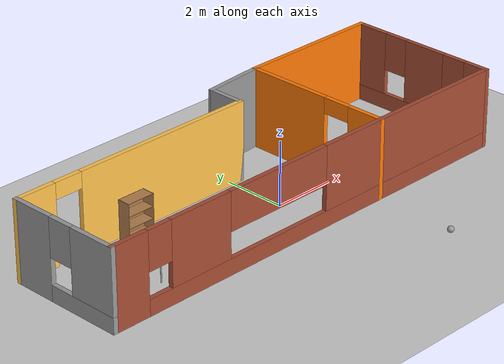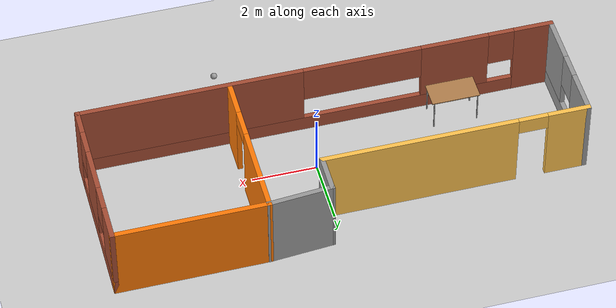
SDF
<sdf version="1.6">
 <world name="default">
  <light name="sun" type="directional">
   <pose>0 0 10 0 -0 0</pose>
   <diffuse>0.8 0.8 0.8 1</diffuse>
   <specular>0.2 0.2 0.2 1</specular>
   <attenuation>
    <range>1000</range>
    <constant>0.9</constant>
    <linear>0.01</linear>
    <quadratic>0.001</quadratic>
   </attenuation>
   <direction>-0.5 0.1 -0.9</direction>
   <spot><inner_angle>0</inner_angle><outer_angle>0</outer_angle><falloff>0</falloff></spot>
  </light>
  <model name="ground_plane">
   <static>1</static>
   <link name="link">
    <collision name="collision">
     <geometry><plane><normal>0 0 1</normal><size>100 100</size></plane></geometry>
     <surface>
      <contact><collide_bitmask>65535</collide_bitmask></contact>
      <friction><ode><mu>100</mu><mu2>50</mu2></ode></friction>
     </surface>
    </collision>
    <visual name="visual">
     <cast_shadows>0</cast_shadows>
     <geometry><plane><normal>0 0 1</normal><size>100 100</size></plane></geometry>
     <material>
      <script><uri>file://media/materials/scripts/gazebo.material</uri><name>Gazebo/Grey</name></script>
     </material>
    </visual>
   </link>
  </model>
  <gravity>0 0 -9.8</gravity>
  <magnetic_field>6e-06 2.3e-05 -4.2e-05</magnetic_field>
  <atmosphere type="adiabatic"/>
  <physics type="ode">
   <max_step_size>0.001</max_step_size>
   <real_time_factor>1</real_time_factor>
   <real_time_update_rate>1000</real_time_update_rate>
  </physics>
  <scene><ambient>0.4 0.4 0.4 1</ambient><background>0.7 0.7 0.7 1</background><shadows>1</shadows></scene>
  <spherical_coordinates>
   <surface_model>EARTH_WGS84</surface_model>
   <latitude_deg>0</latitude_deg>
   <longitude_deg>0</longitude_deg>
   <elevation>0</elevation>
   <heading_deg>0</heading_deg>
  </spherical_coordinates>
  <model name="Building">
   <pose>-0.469156 0.724931 0 0 -0 0</pose>
   <link name="Wall_1">
    <pose>-7.3 -0.627835 0 0 0 -1.5708</pose>
    <visual name="Wall_1_Visual_0">
     <pose>-1.17126 0 1.25 0 -0 0</pose>
     <geometry><box><size>1.40748 0.15 2.5</size></box></geometry>
     <material>
      <script><uri>file://media/materials/scripts/gazebo.material</uri><name>Gazebo/Grey</name></script>
      <ambient>1 1 1 1</ambient>
     </material>
     <meta><layer>0</layer></meta>
    </visual>
    <collision name="Wall_1_Collision_0">
     <geometry><box><size>1.40748 0.15 2.5</size></box></geometry>
     <pose>-1.17126 0 1.25 0 -0 0</pose>
    </collision>
    <visual name="Wall_1_Visual_1">
     <pose>0.703738 0 0.25 0 -0 0</pose>
     <geometry><box><size>2.34253 0.15 0.5</size></box></geometry>
     <material>
      <script><uri>file://media/materials/scripts/gazebo.material</uri><name>Gazebo/Grey</name></script>
      <ambient>1 1 1 1</ambient>
     </material>
     <meta><layer>0</layer></meta>
    </visual>
    <collision name="Wall_1_Collision_1">
     <geometry><box><size>2.34253 0.15 0.5</size></box></geometry>
     <pose>0.703738 0 0.25 0 -0 0</pose>
    </collision>
    <visual name="Wall_1_Visual_2">
     <pose>1.10374 0 1.5 0 -0 0</pose>
     <geometry><box><size>1.54252 0.15 2</size></box></geometry>
     <material>
      <script><uri>file://media/materials/scripts/gazebo.material</uri><name>Gazebo/Grey</name></script>
      <ambient>1 1 1 1</ambient>
     </material>
     <meta><layer>0</layer></meta>
    </visual>
    <collision name="Wall_1_Collision_2">
     <geometry><box><size>1.54252 0.15 2</size></box></geometry>
     <pose>1.10374 0 1.5 0 -0 0</pose>
    </collision>
    <visual name="Wall_1_Visual_3">
     <pose>-0.067525 0 1.9 0 -0 0</pose>
     <geometry><box><size>0.8 0.15 1.2</size></box></geometry>
     <material>
      <script><uri>file://media/materials/scripts/gazebo.material</uri><name>Gazebo/Grey</name></script>
      <ambient>1 1 1 1</ambient>
     </material>
     <meta><layer>0</layer></meta>
    </visual>
    <collision name="Wall_1_Collision_3">
     <geometry><box><size>0.8 0.15 1.2</size></box></geometry>
     <pose>-0.067525 0 1.9 0 -0 0</pose>
    </collision>
   </link>
   <link name="Wall_2">
    <pose>0 -2.42783 0 0 -0 0</pose>
    <visual name="Wall_2_Visual_0">
     <pose>-6.75061 0 1.25 0 -0 0</pose>
     <geometry><box><size>1.24877 0.15 2.5</size></box></geometry>
     <material>
      <script><uri>file://media/materials/scripts/gazebo.material</uri><name>Gazebo/Bricks</name></script>
      <ambient>1 0.764706 0.305882 1</ambient>
     </material>
     <meta><layer>0</layer></meta>
    </visual>
    <collision name="Wall_2_Collision_0">
     <geometry><box><size>1.24877 0.15 2.5</size></box></geometry>
     <pose>-6.75061 0 1.25 0 -0 0</pose>
    </collision>
    <visual name="Wall_2_Visual_1">
     <pose>0.624388 0 0.25 0 -0 0</pose>
     <geometry><box><size>13.5012 0.15 0.5</size></box></geometry>
     <material>
      <script><uri>file://media/materials/scripts/gazebo.material</uri><name>Gazebo/Bricks</name></script>
      <ambient>1 0.764706 0.305882 1</ambient>
     </material>
     <meta><layer>0</layer></meta>
    </visual>
    <collision name="Wall_2_Collision_1">
     <geometry><box><size>13.5012 0.15 0.5</size></box></geometry>
     <pose>0.624388 0 0.25 0 -0 0</pose>
    </collision>
    <visual name="Wall_2_Visual_2">
     <pose>-4.27147 0 1.5 0 -0 0</pose>
     <geometry><box><size>2.1095 0.15 2</size></box></geometry>
     <material>
      <script><uri>file://media/materials/scripts/gazebo.material</uri><name>Gazebo/Bricks</name></script>
      <ambient>1 0.764706 0.305882 1</ambient>
     </material>
     <meta><layer>0</layer></meta>
    </visual>
    <collision name="Wall_2_Collision_2">
     <geometry><box><size>2.1095 0.15 2</size></box></geometry>
     <pose>-4.27147 0 1.5 0 -0 0</pose>
    </collision>
    <visual name="Wall_2_Visual_3">
     <pose>3.90744 0 1.5 0 -0 0</pose>
     <geometry><box><size>6.93513 0.15 2</size></box></geometry>
     <material>
      <script><uri>file://media/materials/scripts/gazebo.material</uri><name>Gazebo/Bricks</name></script>
      <ambient>1 0.764706 0.305882 1</ambient>
     </material>
     <meta><layer>0</layer></meta>
    </visual>
    <collision name="Wall_2_Collision_3">
     <geometry><box><size>6.93513 0.15 2</size></box></geometry>
     <pose>3.90744 0 1.5 0 -0 0</pose>
    </collision>
    <visual name="Wall_2_Visual_4">
     <pose>-5.72623 0 1.9 0 -0 0</pose>
     <geometry><box><size>0.8 0.15 1.2</size></box></geometry>
     <material>
      <script><uri>file://media/materials/scripts/gazebo.material</uri><name>Gazebo/Bricks</name></script>
      <ambient>1 0.764706 0.305882 1</ambient>
     </material>
     <meta><layer>0</layer></meta>
    </visual>
    <collision name="Wall_2_Collision_4">
     <geometry><box><size>0.8 0.15 1.2</size></box></geometry>
     <pose>-5.72623 0 1.9 0 -0 0</pose>
    </collision>
    <visual name="Wall_2_Visual_5">
     <pose>-1.38843 0 1.9 0 -0 0</pose>
     <geometry><box><size>3.6566 0.15 1.2</size></box></geometry>
     <material>
      <script><uri>file://media/materials/scripts/gazebo.material</uri><name>Gazebo/Bricks</name></script>
      <ambient>1 0.764706 0.305882 1</ambient>
     </material>
     <meta><layer>0</layer></meta>
    </visual>
    <collision name="Wall_2_Collision_5">
     <geometry><box><size>3.6566 0.15 1.2</size></box></geometry>
     <pose>-1.38843 0 1.9 0 -0 0</pose>
    </collision>
   </link>
   <link name="Wall_3">
    <pose>7.3 -0.002835 0 0 -0 1.5708</pose>
    <visual name="Wall_3_Visual_0">
     <pose>-2.08581 0 1.25 0 -0 0</pose>
     <geometry><box><size>0.828375 0.15 2.5</size></box></geometry>
     <material>
      <script><uri>file://media/materials/scripts/gazebo.material</uri><name>Gazebo/Bricks</name></script>
      <ambient>1 1 1 1</ambient>
     </material>
     <meta><layer>0</layer></meta>
    </visual>
    <collision name="Wall_3_Collision_0">
     <geometry><box><size>0.828375 0.15 2.5</size></box></geometry>
     <pose>-2.08581 0 1.25 0 -0 0</pose>
    </collision>
    <visual name="Wall_3_Visual_1">
     <pose>0.414187 0 0.25 0 -0 0</pose>
     <geometry><box><size>4.17162 0.15 0.5</size></box></geometry>
     <material>
      <script><uri>file://media/materials/scripts/gazebo.material</uri><name>Gazebo/Bricks</name></script>
      <ambient>1 1 1 1</ambient>
     </material>
     <meta><layer>0</layer></meta>
    </visual>
    <collision name="Wall_3_Collision_1">
     <geometry><box><size>4.17162 0.15 0.5</size></box></geometry>
     <pose>0.414187 0 0.25 0 -0 0</pose>
    </collision>
    <visual name="Wall_3_Visual_2">
     <pose>-0.154113 0 1.5 0 -0 0</pose>
     <geometry><box><size>1.43502 0.15 2</size></box></geometry>
     <material>
      <script><uri>file://media/materials/scripts/gazebo.material</uri><name>Gazebo/Bricks</name></script>
      <ambient>1 1 1 1</ambient>
     </material>
     <meta><layer>0</layer></meta>
    </visual>
    <collision name="Wall_3_Collision_2">
     <geometry><box><size>1.43502 0.15 2</size></box></geometry>
     <pose>-0.154113 0 1.5 0 -0 0</pose>
    </collision>
    <visual name="Wall_3_Visual_3">
     <pose>1.9317 0 1.5 0 -0 0</pose>
     <geometry><box><size>1.1366 0.15 2</size></box></geometry>
     <material>
      <script><uri>file://media/materials/scripts/gazebo.material</uri><name>Gazebo/Bricks</name></script>
      <ambient>1 1 1 1</ambient>
     </material>
     <meta><layer>0</layer></meta>
    </visual>
    <collision name="Wall_3_Collision_3">
     <geometry><box><size>1.1366 0.15 2</size></box></geometry>
     <pose>1.9317 0 1.5 0 -0 0</pose>
    </collision>
    <visual name="Wall_3_Visual_4">
     <pose>-1.27163 0 1.9 0 -0 0</pose>
     <geometry><box><size>0.8 0.15 1.2</size></box></geometry>
     <material>
      <script><uri>file://media/materials/scripts/gazebo.material</uri><name>Gazebo/Bricks</name></script>
      <ambient>1 1 1 1</ambient>
     </material>
     <meta><layer>0</layer></meta>
    </visual>
    <collision name="Wall_3_Collision_4">
     <geometry><box><size>0.8 0.15 1.2</size></box></geometry>
     <pose>-1.27163 0 1.9 0 -0 0</pose>
    </collision>
    <visual name="Wall_3_Visual_5">
     <pose>0.9634 0 1.9 0 -0 0</pose>
     <geometry><box><size>0.8 0.15 1.2</size></box></geometry>
     <material>
      <script><uri>file://media/materials/scripts/gazebo.material</uri><name>Gazebo/Bricks</name></script>
      <ambient>1 1 1 1</ambient>
     </material>
     <meta><layer>0</layer></meta>
    </visual>
    <collision name="Wall_3_Collision_5">
     <geometry><box><size>0.8 0.15 1.2</size></box></geometry>
     <pose>0.9634 0 1.9 0 -0 0</pose>
    </collision>
   </link>
   <link name="Wall_4">
    <collision name="Wall_4_Collision">
     <geometry><box><size>4.75 0.15 2.5</size></box></geometry>
     <pose>0 0 1.25 0 -0 0</pose>
    </collision>
    <visual name="Wall_4_Visual">
     <pose>0 0 1.25 0 -0 0</pose>
     <geometry><box><size>4.75 0.15 2.5</size></box></geometry>
     <material>
      <script><uri>file://media/materials/scripts/gazebo.material</uri><name>Gazebo/Grey</name></script>
      <ambient>0.996078 0.47451 0.0196078 1</ambient>
     </material>
     <meta><layer>0</layer></meta>
    </visual>
    <pose>5 2.42217 0 0 -0 3.14159</pose>
   </link>
   <link name="Wall_5">
    <pose>2.7 -0.002835 0 0 0 -1.5708</pose>
    <visual name="Wall_5_Visual_0">
     <pose>-1.06401 0 1.25 0 -0 0</pose>
     <geometry><box><size>2.87197 0.15 2.5</size></box></geometry>
     <material>
      <script><uri>file://media/materials/scripts/gazebo.material</uri><name>Gazebo/Grey</name></script>
      <ambient>0.996078 0.47451 0.0196078 1</ambient>
     </material>
     <meta><layer>0</layer></meta>
    </visual>
    <collision name="Wall_5_Collision_0">
     <geometry><box><size>2.87197 0.15 2.5</size></box></geometry>
     <pose>-1.06401 0 1.25 0 -0 0</pose>
    </collision>
    <visual name="Wall_5_Visual_1">
     <pose>1.88599 0 1.25 0 -0 0</pose>
     <geometry><box><size>1.22802 0.15 2.5</size></box></geometry>
     <material>
      <script><uri>file://media/materials/scripts/gazebo.material</uri><name>Gazebo/Grey</name></script>
      <ambient>0.996078 0.47451 0.0196078 1</ambient>
     </material>
     <meta><layer>0</layer></meta>
    </visual>
    <collision name="Wall_5_Collision_1">
     <geometry><box><size>1.22802 0.15 2.5</size></box></geometry>
     <pose>1.88599 0 1.25 0 -0 0</pose>
    </collision>
    <visual name="Wall_5_Visual_2">
     <pose>0.821975 0 2.25 0 -0 0</pose>
     <geometry><box><size>0.9 0.15 0.5</size></box></geometry>
     <material>
      <script><uri>file://media/materials/scripts/gazebo.material</uri><name>Gazebo/Grey</name></script>
      <ambient>0.996078 0.47451 0.0196078 1</ambient>
     </material>
     <meta><layer>0</layer></meta>
    </visual>
    <collision name="Wall_5_Collision_2">
     <geometry><box><size>0.9 0.15 0.5</size></box></geometry>
     <pose>0.821975 0 2.25 0 -0 0</pose>
    </collision>
   </link>
   <link name="Wall_7">
    <pose>-3.25 1.17216 0 0 -0 0</pose>
    <visual name="Wall_7_Visual_0">
     <pose>-3.4661 0 1.25 0 -0 0</pose>
     <geometry><box><size>1.3178 0.15 2.5</size></box></geometry>
     <material>
      <script><uri>file://media/materials/scripts/gazebo.material</uri><name>Gazebo/Grey</name></script>
      <ambient>1 0.764706 0.305882 1</ambient>
     </material>
     <meta><layer>0</layer></meta>
    </visual>
    <collision name="Wall_7_Collision_0">
     <geometry><box><size>1.3178 0.15 2.5</size></box></geometry>
     <pose>-3.4661 0 1.25 0 -0 0</pose>
    </collision>
    <visual name="Wall_7_Visual_1">
     <pose>1.1089 0 1.25 0 -0 0</pose>
     <geometry><box><size>6.0322 0.15 2.5</size></box></geometry>
     <material>
      <script><uri>file://media/materials/scripts/gazebo.material</uri><name>Gazebo/Grey</name></script>
      <ambient>1 0.764706 0.305882 1</ambient>
     </material>
     <meta><layer>0</layer></meta>
    </visual>
    <collision name="Wall_7_Collision_1">
     <geometry><box><size>6.0322 0.15 2.5</size></box></geometry>
     <pose>1.1089 0 1.25 0 -0 0</pose>
    </collision>
    <visual name="Wall_7_Visual_2">
     <pose>-2.3572 0 2.25 0 -0 0</pose>
     <geometry><box><size>0.9 0.15 0.5</size></box></geometry>
     <material>
      <script><uri>file://media/materials/scripts/gazebo.material</uri><name>Gazebo/Grey</name></script>
      <ambient>1 0.764706 0.305882 1</ambient>
     </material>
     <meta><layer>0</layer></meta>
    </visual>
    <collision name="Wall_7_Collision_2">
     <geometry><box><size>0.9 0.15 0.5</size></box></geometry>
     <pose>-2.3572 0 2.25 0 -0 0</pose>
    </collision>
   </link>
   <link name="Wall_8">
    <collision name="Wall_8_Collision">
     <geometry><box><size>1.25 0.15 2.5</size></box></geometry>
     <pose>0 0 1.25 0 -0 0</pose>
    </collision>
    <visual name="Wall_8_Visual">
     <pose>0 0 1.25 0 -0 0</pose>
     <geometry><box><size>1.25 0.15 2.5</size></box></geometry>
     <material>
      <script><uri>file://media/materials/scripts/gazebo.material</uri><name>Gazebo/Grey</name></script>
      <ambient>1 1 1 1</ambient>
     </material>
     <meta><layer>0</layer></meta>
    </visual>
    <pose>0.8 1.72216 0 0 -0 1.5708</pose>
   </link>
   <link name="Wall_9">
    <collision name="Wall_9_Collision">
     <geometry><box><size>2.05591 0.15 2.5</size></box></geometry>
     <pose>0 0 1.25 0 -0 0</pose>
    </collision>
    <visual name="Wall_9_Visual">
     <pose>0 0 1.25 0 -0 0</pose>
     <geometry><box><size>2.05591 0.15 2.5</size></box></geometry>
     <material>
      <script><uri>file://media/materials/scripts/gazebo.material</uri><name>Gazebo/Grey</name></script>
      <ambient>1 1 1 1</ambient>
     </material>
     <meta><layer>0</layer></meta>
    </visual>
    <pose>1.75 2.34716 0 0 -0 0.078784</pose>
   </link>
   <static>1</static>
  </model>
  <model name="bookshelf">
   <static>1</static>
   <link name="link">
    <inertial><mass>1</mass></inertial>
    <collision name="back">
     <pose>0 0.005 0.6 0 -0 0</pose>
     <geometry><box><size>0.9 0.01 1.2</size></box></geometry>
    </collision>
    <visual name="visual1">
     <pose>0 0.005 0.6 0 -0 0</pose>
     <geometry><box><size>0.9 0.01 1.2</size></box></geometry>
     <material>
      <script><uri>file://media/materials/scripts/gazebo.material</uri><name>Gazebo/Wood</name></script>
     </material>
    </visual>
    <collision name="left_side">
     <pose>0.45 -0.195 0.6 0 -0 0</pose>
     <geometry><box><size>0.02 0.4 1.2</size></box></geometry>
    </collision>
    <visual name="visual2">
     <pose>0.45 -0.195 0.6 0 -0 0</pose>
     <geometry><box><size>0.02 0.4 1.2</size></box></geometry>
     <material>
      <script><uri>file://media/materials/scripts/gazebo.material</uri><name>Gazebo/Wood</name></script>
     </material>
    </visual>
    <collision name="right_side">
     <pose>-0.45 -0.195 0.6 0 -0 0</pose>
     <geometry><box><size>0.02 0.4 1.2</size></box></geometry>
    </collision>
    <visual name="visual3">
     <pose>-0.45 -0.195 0.6 0 -0 0</pose>
     <geometry><box><size>0.02 0.4 1.2</size></box></geometry>
     <material>
      <script><uri>file://media/materials/scripts/gazebo.material</uri><name>Gazebo/Wood</name></script>
     </material>
    </visual>
    <collision name="bottom">
     <pose>0 -0.195 0.03 0 -0 0</pose>
     <geometry><box><size>0.88 0.4 0.06</size></box></geometry>
    </collision>
    <visual name="visual4">
     <pose>0 -0.195 0.03 0 -0 0</pose>
     <geometry><box><size>0.88 0.4 0.06</size></box></geometry>
     <material>
      <script><uri>file://media/materials/scripts/gazebo.material</uri><name>Gazebo/Wood</name></script>
     </material>
    </visual>
    <collision name="top">
     <pose>0 -0.195 1.19 0 -0 0</pose>
     <geometry><box><size>0.88 0.4 0.02</size></box></geometry>
    </collision>
    <visual name="visual5">
     <pose>0 -0.195 1.19 0 -0 0</pose>
     <geometry><box><size>0.88 0.4 0.02</size></box></geometry>
     <material>
      <script><uri>file://media/materials/scripts/gazebo.material</uri><name>Gazebo/Wood</name></script>
     </material>
    </visual>
    <collision name="low_shelf">
     <pose>0 -0.195 0.43 0 -0 0</pose>
     <geometry><box><size>0.88 0.4 0.02</size></box></geometry>
    </collision>
    <visual name="visual6">
     <pose>0 -0.195 0.43 0 -0 0</pose>
     <geometry><box><size>0.88 0.4 0.02</size></box></geometry>
     <material>
      <script><uri>file://media/materials/scripts/gazebo.material</uri><name>Gazebo/Wood</name></script>
     </material>
    </visual>
    <collision name="high_shelf">
     <pose>0 -0.195 0.8 0 -0 0</pose>
     <geometry><box><size>0.88 0.4 0.02</size></box></geometry>
    </collision>
    <visual name="visual7">
     <pose>0 -0.195 0.8 0 -0 0</pose>
     <geometry><box><size>0.88 0.4 0.02</size></box></geometry>
     <material>
      <script><uri>file://media/materials/scripts/gazebo.material</uri><name>Gazebo/Wood</name></script>
     </material>
    </visual>
   </link>
   <pose>-3.94216 1.79729 0 0 -0 0</pose>
  </model>
  <model name="table">
   <static>1</static>
   <link name="link">
    <collision name="surface">
     <pose>0 0 1 0 -0 0</pose>
     <geometry><box><size>1.5 0.8 0.03</size></box></geometry>
     <surface><friction><ode><mu>0.6</mu><mu2>0.6</mu2></ode></friction></surface>
    </collision>
    <visual name="visual1">
     <pose>0 0 1 0 -0 0</pose>
     <geometry><box><size>1.5 0.8 0.03</size></box></geometry>
     <material>
      <script><uri>file://media/materials/scripts/gazebo.material</uri><name>Gazebo/Wood</name></script>
     </material>
    </visual>
    <collision name="front_left_leg">
     <pose>0.68 0.38 0.5 0 -0 0</pose>
     <geometry><cylinder><radius>0.02</radius><length>1</length></cylinder></geometry>
    </collision>
    <visual name="front_left_leg">
     <pose>0.68 0.38 0.5 0 -0 0</pose>
     <geometry><cylinder><radius>0.02</radius><length>1</length></cylinder></geometry>
     <material>
      <script><uri>file://media/materials/scripts/gazebo.material</uri><name>Gazebo/Grey</name></script>
     </material>
    </visual>
    <collision name="front_right_leg">
     <pose>0.68 -0.38 0.5 0 -0 0</pose>
     <geometry><cylinder><radius>0.02</radius><length>1</length></cylinder></geometry>
    </collision>
    <visual name="front_right_leg">
     <pose>0.68 -0.38 0.5 0 -0 0</pose>
     <geometry><cylinder><radius>0.02</radius><length>1</length></cylinder></geometry>
     <material>
      <script><uri>file://media/materials/scripts/gazebo.material</uri><name>Gazebo/Grey</name></script>
     </material>
    </visual>
    <collision name="back_right_leg">
     <pose>-0.68 -0.38 0.5 0 -0 0</pose>
     <geometry><cylinder><radius>0.02</radius><length>1</length></cylinder></geometry>
    </collision>
    <visual name="back_right_leg">
     <pose>-0.68 -0.38 0.5 0 -0 0</pose>
     <geometry><cylinder><radius>0.02</radius><length>1</length></cylinder></geometry>
     <material>
      <script><uri>file://media/materials/scripts/gazebo.material</uri><name>Gazebo/Grey</name></script>
     </material>
    </visual>
    <collision name="back_left_leg">
     <pose>-0.68 0.38 0.5 0 -0 0</pose>
     <geometry><cylinder><radius>0.02</radius><length>1</length></cylinder></geometry>
    </collision>
    <visual name="back_left_leg">
     <pose>-0.68 0.38 0.5 0 -0 0</pose>
     <geometry><cylinder><radius>0.02</radius><length>1</length></cylinder></geometry>
     <material>
      <script><uri>file://media/materials/scripts/gazebo.material</uri><name>Gazebo/Grey</name></script>
     </material>
    </visual>
   </link>
   <pose>-4.54324 -1.09934 0 0 -0 0</pose>
  </model>
  <model name="my_ball">
   <link name="link">
    <inertial>
     <mass>1</mass>
     <inertia><ixx>0.1</ixx><ixy>0</ixy><ixz>0</ixz><iyy>0.1</iyy><iyz>0</iyz><izz>0.1</izz></inertia>
    </inertial>
    <visual name="visual">
     <geometry><sphere><radius>0.1</radius></sphere></geometry>
     <material>
      <script><name>Gazebo/Grey</name><uri>file://media/materials/scripts/gazebo.material</uri></script>
      <shader type="pixel"><normal_map>__default__</normal_map></shader>
      <ambient>1 1 1 1</ambient>
      <diffuse>1 1 1 1</diffuse>
      <specular>1 1 1 1</specular>
      <emissive>1 1 1 1</emissive>
     </material>
    </visual>
    <collision name="collision">
     <geometry><sphere><radius>0.1</radius></sphere></geometry>
     <surface>
      <friction>
       <ode><mu>1</mu><mu2>1</mu2><fdir1>0 0 0</fdir1><slip1>0</slip1><slip2>0</slip2></ode>
       <torsional>
        <coefficient>1</coefficient>
        <patch_radius>0</patch_radius>
        <surface_radius>0</surface_radius>
        <use_patch_radius>1</use_patch_radius>
        <ode><slip>0</slip></ode>
       </torsional>
      </friction>
      <bounce><restitution_coefficient>0</restitution_coefficient><threshold>1e+06</threshold></bounce>
      <contact>
       <collide_without_contact>0</collide_without_contact>
       <collide_without_contact_bitmask>1</collide_without_contact_bitmask>
       <collide_bitmask>1</collide_bitmask>
       <ode>
        <soft_cfm>0</soft_cfm>
        <soft_erp>0.2</soft_erp>
        <kp>1e+13</kp>
        <kd>1</kd>
        <max_vel>0.01</max_vel>
        <min_depth>0</min_depth>
       </ode>
       <bullet>
        <split_impulse>1</split_impulse>
        <split_impulse_penetration_threshold>-0.01</split_impulse_penetration_threshold>
        <soft_cfm>0</soft_cfm>
        <soft_erp>0.2</soft_erp>
        <kp>1e+13</kp>
        <kd>1</kd>
       </bullet>
      </contact>
     </surface>
    </collision>
   </link>
   <static>0</static>
   <pose>2.13312 -4.41099 0.1 0 -0 0</pose>
  </model>
  <plugin filename="libcollision_map_creator.so" name="collision_map_creator"/>
 </world>
</sdf>
